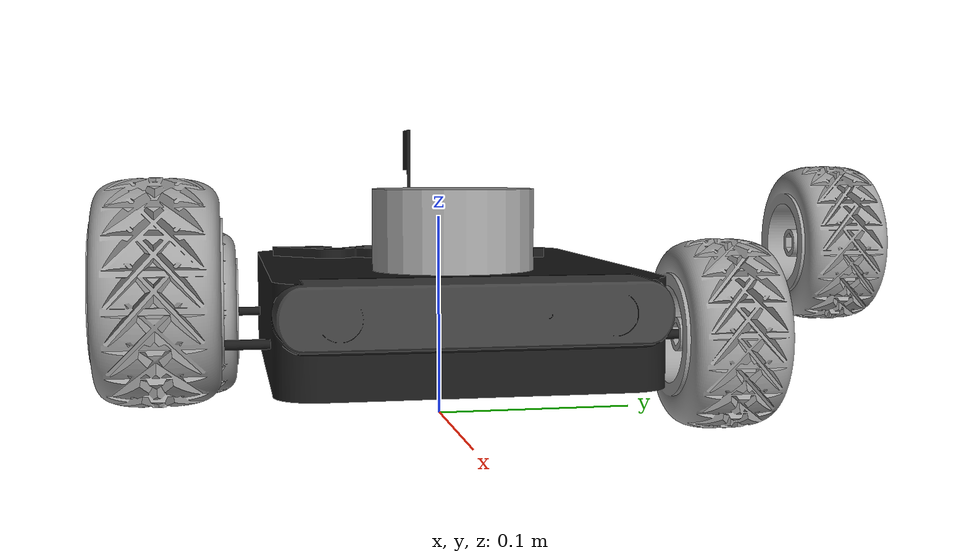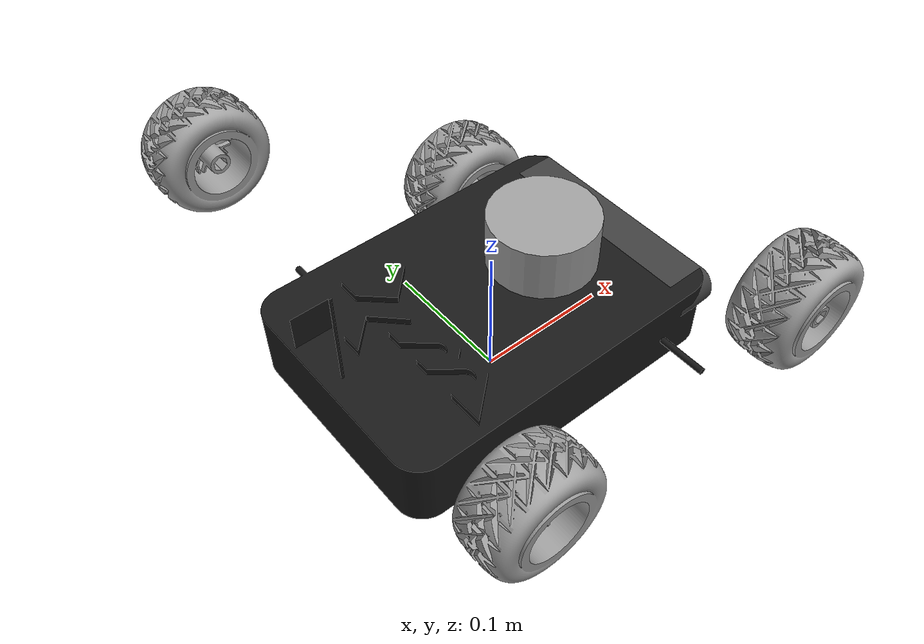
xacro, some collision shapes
<?xml version="1.0"?>

<robot xmlns:xacro="http://www.ros.org/wiki/xacro" name="ma_robot">

  <!-- Materials -->
  <material name="Acetal_Resin_Black">
    <color rgba="0.098 0.098 0.098 1.0"/>
  </material>

  <material name="PA_11_Nylon_HP_11_30_with_EOS_P_396_3D_Printer">
    <color rgba="0.247 0.247 0.247 1.0"/>
  </material>

  <material name="Steel">
    <color rgba="0.627 0.627 0.627 1.0"/>
  </material>

  <!-- Assembly includes -->
  <xacro:include filename="$(find ma_robot_description)/urdf/assemblies/rear_left_wheel_link.urdf.xacro"/>
  <xacro:include filename="$(find ma_robot_description)/urdf/assemblies/front_left_wheel_link.urdf.xacro"/>
  <xacro:include filename="$(find ma_robot_description)/urdf/assemblies/front_right_wheel_link.urdf.xacro"/>
  <xacro:include filename="$(find ma_robot_description)/urdf/assemblies/rear_right_wheel_link.urdf.xacro"/>
  <xacro:include filename="$(find ma_robot_description)/urdf/assemblies/ma_robot.urdf.xacro"/>

  <!-- Gazebo configuration -->
  <xacro:include filename="$(find ma_robot_description)/urdf/ma_robot.gazebo.xacro"/>

  <!-- Instantiate assemblies -->
  <xacro:rear_left_wheel_link prefix=""/>
  <xacro:front_left_wheel_link prefix=""/>
  <xacro:front_right_wheel_link prefix=""/>
  <xacro:rear_right_wheel_link prefix=""/>
  <xacro:ma_robot prefix=""/>

  <!-- Wheel mount joints -->

  <!-- Front-left wheel -->
  <joint name="front_left_wheel_joint" type="continuous">
    <parent link="base_link"/>
    <child link="front_left_wheel_link"/>

    <origin
      xyz="0.130000 0.060000 0.020000"
      rpy="-1.570796 0.000000 0.000000"/>

    <axis xyz="0.000000 0.000000 1.000000"/>

    <limit effort="100.0" velocity="10.0"/>
  </joint>

  <!-- Front-right wheel -->
  <joint name="front_right_wheel_joint" type="continuous">
    <parent link="base_link"/>
    <child link="front_right_wheel_link"/>

    <origin
      xyz="0.130000 -0.185000 0.020000"
      rpy="1.570796 0.000000 0.000000"/>

    <!-- Reversed because the right wheel frame is mirrored -->
    <axis xyz="0.000000 0.000000 -1.000000"/>

    <limit effort="100.0" velocity="10.0"/>
  </joint>

  <!-- Rear-left wheel -->
  <joint name="rear_left_wheel_joint" type="continuous">
    <parent link="base_link"/>
    <child link="rear_left_wheel_link"/>

    <origin
      xyz="-0.020000 0.060000 0.020000"
      rpy="-1.570796 0.000000 0.000000"/>

    <axis xyz="0.000000 0.000000 1.000000"/>

    <limit effort="100.0" velocity="10.0"/>
  </joint>

  <!-- Rear-right wheel -->
  <joint name="rear_right_wheel_joint" type="continuous">
    <parent link="base_link"/>
    <child link="rear_right_wheel_link"/>

    <origin
      xyz="-0.020000 -0.187000 0.020000"
      rpy="1.570796 0.000000 0.000000"/>

    <!-- Reversed because the right wheel frame is mirrored -->
    <axis xyz="0.000000 0.000000 -1.000000"/>

    <limit effort="100.0" velocity="10.0"/>
  </joint>

  <!-- ROS 2 control -->
  <ros2_control name="ma_robot_system" type="system">

    <hardware>
      <plugin>mock_components/GenericSystem</plugin>
      <param name="cmd_topic">sim/ma_robot_system/cmd</param>
      <param name="state_topic">sim/ma_robot_system/state</param>
    </hardware>

    <joint name="front_left_wheel_joint">
      <command_interface name="position"/>
      <command_interface name="velocity"/>

      <state_interface name="position">
        <param name="initial_value">0.0</param>
      </state_interface>

      <state_interface name="velocity"/>
      <state_interface name="effort"/>
    </joint>

    <joint name="front_right_wheel_joint">
      <command_interface name="position"/>
      <command_interface name="velocity"/>

      <state_interface name="position">
        <param name="initial_value">0.0</param>
      </state_interface>

      <state_interface name="velocity"/>
      <state_interface name="effort"/>
    </joint>

    <joint name="rear_left_wheel_joint">
      <command_interface name="position"/>
      <command_interface name="velocity"/>

      <state_interface name="position">
        <param name="initial_value">0.0</param>
      </state_interface>

      <state_interface name="velocity"/>
      <state_interface name="effort"/>
    </joint>

    <joint name="rear_right_wheel_joint">
      <command_interface name="position"/>
      <command_interface name="velocity"/>

      <state_interface name="position">
        <param name="initial_value">0.0</param>
      </state_interface>

      <state_interface name="velocity"/>
      <state_interface name="effort"/>
    </joint>

  </ros2_control>

</robot>

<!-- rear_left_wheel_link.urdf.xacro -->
<robot xmlns:xacro="http://www.ros.org/wiki/xacro"
       name="rear_left_wheel_link_macro">

  <xacro:macro name="rear_left_wheel_link" params="prefix">

    <link name="${prefix}rear_left_wheel_link">

      <inertial>
        <origin xyz="0 0 0" rpy="0 0 0"/>
        <mass value="0.611603"/>
        <inertia
          ixx="5.265770e-04"
          ixy="-5.777757e-10"
          ixz="8.274260e-11"
          iyy="5.265750e-04"
          iyz="-6.033033e-11"
          izz="7.325315e-04"/>
      </inertial>

      <visual>
        <origin
          xyz="-0.012900 -0.018051 0.005477"
          rpy="1.570796 0.000000 0.000000"/>
        <geometry>
          <mesh
            filename="package://ma_robot_description/meshes/rear_left_wheel_link/rear_left_wheel_link.dae"
            scale="1 1 1"/>
        </geometry>
        <material name="Steel"/>
      </visual>

      <collision>
        <origin xyz="0 0 0" rpy="0 0 0"/>
        <geometry>
          <cylinder radius="0.045" length="0.050"/>
        </geometry>
      </collision>

    </link>

  </xacro:macro>

</robot>

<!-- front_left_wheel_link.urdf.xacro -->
<robot xmlns:xacro="http://www.ros.org/wiki/xacro"
       name="front_left_wheel_link_macro">

  <xacro:macro name="front_left_wheel_link" params="prefix">

    <link name="${prefix}front_left_wheel_link">

      <inertial>
        <origin xyz="0 0 0" rpy="0 0 0"/>
        <mass value="0.611603"/>
        <inertia
          ixx="5.265770e-04"
          ixy="-5.777757e-10"
          ixz="-8.274260e-11"
          iyy="5.265750e-04"
          iyz="6.033033e-11"
          izz="7.325315e-04"/>
      </inertial>

      <visual>
        <origin
          xyz="-0.107100 0.070499 -0.137841"
          rpy="1.570796 0.000000 3.141593"/>
        <geometry>
          <mesh
            filename="package://ma_robot_description/meshes/front_left_wheel_link/front_left_wheel_link.dae"
            scale="1 1 1"/>
        </geometry>
        <material name="Steel"/>
      </visual>

      <collision>
        <origin xyz="0 0 0" rpy="0 0 0"/>
        <geometry>
          <cylinder radius="0.045" length="0.050"/>
        </geometry>
      </collision>

    </link>

  </xacro:macro>

</robot>

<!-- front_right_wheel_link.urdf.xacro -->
<robot xmlns:xacro="http://www.ros.org/wiki/xacro"
       name="front_right_wheel_link_macro">

  <xacro:macro name="front_right_wheel_link" params="prefix">

    <link name="${prefix}front_right_wheel_link">

      <inertial>
        <origin xyz="0 0 0" rpy="0 0 0"/>
        <mass value="0.611603"/>
        <inertia
          ixx="5.265770e-04"
          ixy="-5.777757e-10"
          ixz="-8.274258e-11"
          iyy="5.265750e-04"
          iyz="6.033033e-11"
          izz="7.325315e-04"/>
      </inertial>

      <visual>
        <origin
          xyz="0.179797 0.018051 0.124560"
          rpy="1.570796 0.000000 3.141593"/>
        <geometry>
          <mesh
            filename="package://ma_robot_description/meshes/front_right_wheel_link/front_right_wheel_link.dae"
            scale="1 1 1"/>
        </geometry>
        <material name="Steel"/>
      </visual>

      <collision>
        <origin xyz="0 0 0" rpy="0 0 0"/>
        <geometry>
          <cylinder radius="0.045" length="0.050"/>
        </geometry>
      </collision>

    </link>

  </xacro:macro>

</robot>

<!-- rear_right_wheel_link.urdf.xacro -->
<robot xmlns:xacro="http://www.ros.org/wiki/xacro"
       name="rear_right_wheel_link_macro">

  <xacro:macro name="rear_right_wheel_link" params="prefix">

    <link name="${prefix}rear_right_wheel_link">

      <inertial>
        <origin xyz="0 0 0" rpy="0 0 0"/>
        <mass value="0.611603"/>
        <inertia
          ixx="5.265770e-04"
          ixy="-5.777757e-10"
          ixz="8.274260e-11"
          iyy="5.265750e-04"
          iyz="-6.033033e-11"
          izz="7.325315e-04"/>
      </inertial>

      <visual>
        <origin
          xyz="0.002378 -0.018051 -0.241816"
          rpy="1.570796 0.000000 0.000000"/>
        <geometry>
          <mesh
            filename="package://ma_robot_description/meshes/rear_right_wheel_link/rear_right_wheel_link.dae"
            scale="1 1 1"/>
        </geometry>
        <material name="Steel"/>
      </visual>

      <collision>
        <origin xyz="0 0 0" rpy="0 0 0"/>
        <geometry>
          <cylinder radius="0.045" length="0.050"/>
        </geometry>
      </collision>

    </link>

  </xacro:macro>

</robot>

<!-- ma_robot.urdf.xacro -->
<robot xmlns:xacro="http://www.ros.org/wiki/xacro"
       name="ma_robot_macro">

  <xacro:macro name="ma_robot" params="prefix">
    <link name="${prefix}base_footprint"/>
    <!-- Base link -->
    <link name="${prefix}base_link">

      <inertial>
        <origin
          xyz="0.041574 -0.062494 0.024420"
          rpy="0 0 0"/>

        <mass value="2.899172"/>

        <inertia
          ixx="7.973854e-03"
          ixy="9.036948e-07"
          ixz="2.783510e-04"
          iyy="1.379501e-02"
          iyz="-4.481462e-07"
          izz="2.052789e-02"/>
      </inertial>

      <visual>
        <origin xyz="0 0 0" rpy="0 0 0"/>

        <geometry>
          <mesh
            filename="package://ma_robot_description/meshes/ma_robot/base_link.dae"
            scale="1 1 1"/>
        </geometry>

        <material name="Acetal_Resin_Black"/>
      </visual>

      <collision>
        <origin xyz="0 0 0" rpy="0 0 0"/>

        <geometry>
          <mesh
            filename="package://ma_robot_description/meshes/ma_robot/base_link_collision.stl"
            scale="0.01 0.01 0.01"/>
        </geometry>
      </collision>

    </link>
    <!--
      The base_link CAD origin is offset from the kinematic
      center represented by base_footprint.

      X = -55.000 mm
      Y = +62.500 mm
      Z = +26.386 mm above the ground
    -->
    <joint name="${prefix}base_footprint_joint"
           type="fixed">

      <parent link="${prefix}base_footprint"/>
      <child link="${prefix}base_link"/>

      <origin
        xyz="-0.055000 0.062500 0.026386"
        rpy="0.000000 0.000000 0.000000"/>

    </joint>

    <!-- ZED2 camera physical link -->
    <link name="${prefix}zed2_camera_link">

      <!--
        zed2_camera_link uses the standard robot frame:
          +X forward
          +Y left
          +Z upward
      -->
      <inertial>
        <origin
          xyz="0.015505 0.000000 0.042389"
          rpy="0.000000 0.000000 -1.570796"/>

        <mass value="0.178229"/>

        <inertia
          ixx="2.662726e-05"
          ixy="-3.215230e-09"
          ixz="-1.621734e-09"
          iyy="4.362977e-04"
          iyz="-2.967393e-09"
          izz="4.390806e-04"/>
      </inertial>

      <visual>
        <origin
          xyz="0 0 0"
          rpy="0.000000 0.000000 -1.570796"/>

        <geometry>
          <mesh
            filename="package://ma_robot_description/meshes/ma_robot/zed2_camera_link.dae"
            scale="1 1 1"/>
        </geometry>

        <material
          name="PA_11_Nylon_HP_11_30_with_EOS_P_396_3D_Printer"/>
      </visual>

      <collision>
        <origin
          xyz="0 0 0"
          rpy="0.000000 0.000000 -1.570796"/>

        <geometry>
          <mesh
            filename="package://ma_robot_description/meshes/ma_robot/zed2_camera_link_collision.stl"
            scale="0.01 0.01 0.01"/>
        </geometry>
      </collision>

    </link>

    <link name="${prefix}zed2_camera_optical_link"/>

    <!-- RPLIDAR S2 -->
    <link name="${prefix}rplidar_s2_link">

      <inertial>
        <origin
          xyz="-0.000007 -0.000076 -0.009381"
          rpy="0 0 0"/>

        <mass value="0.203764"/>

        <inertia
          ixx="1.351079e-04"
          ixy="-7.653496e-09"
          ixz="1.410544e-08"
          iyy="1.362177e-04"
          iyz="3.930765e-08"
          izz="2.370283e-04"/>
      </inertial>

      <!-- Offset removes coordinates baked inside the DAE mesh -->
      <visual>
        <origin
          xyz="0.595006 -0.533018 -0.022261"
          rpy="0 0 0"/>

        <geometry>
          <mesh
            filename="package://ma_robot_description/meshes/ma_robot/rplidar_s2_link.dae"
            scale="1 1 1"/>
        </geometry>

        <material name="Steel"/>
      </visual>

      <!-- Simplified collision centered on the lidar frame -->
      <collision>
        <origin xyz="0 0 0" rpy="0 0 0"/>

        <geometry>
          <cylinder
            radius="0.0385"
            length="0.038851"/>
        </geometry>
      </collision>

    </link>

    <!-- Camera fixed joint -->
    <joint name="${prefix}zed2_camera_joint"
           type="fixed">

      <parent link="${prefix}base_link"/>
      <child link="${prefix}zed2_camera_link"/>

      <origin
        xyz="0.145000 -0.062500 -0.007371"
        rpy="0.000000 0.000000 0.000000"/>

    </joint>

    <!--
      Fixed transform from the physical camera frame to the
      standard ROS optical camera frame.
    -->
    <joint name="${prefix}zed2_camera_optical_joint"
           type="fixed">

      <parent link="${prefix}zed2_camera_link"/>
      <child link="${prefix}zed2_camera_optical_link"/>

      <origin
        xyz="0.000000 0.000000 0.000000"
        rpy="-1.570796 0.000000 -1.570796"/>

    </joint>

    <!-- Lidar fixed joint -->
    <joint name="${prefix}rplidar_s2_joint"
           type="fixed">

      <parent link="${prefix}base_link"/>
      <child link="${prefix}rplidar_s2_link"/>

      <origin
        xyz="0.099271 -0.062500 0.069076"
        rpy="0.000000 0.000000 -1.570796"/>

    </joint>

  </xacro:macro>

</robot>
